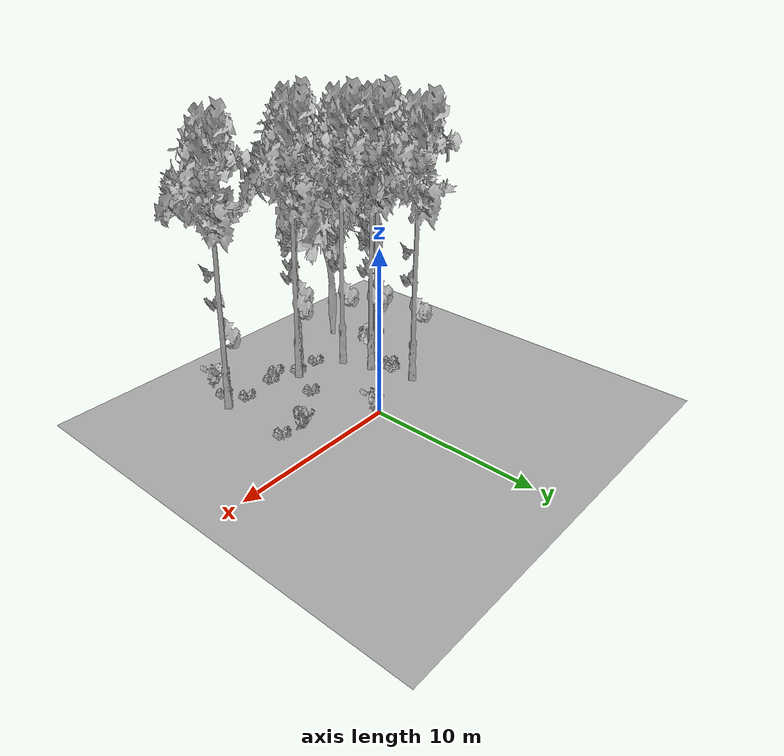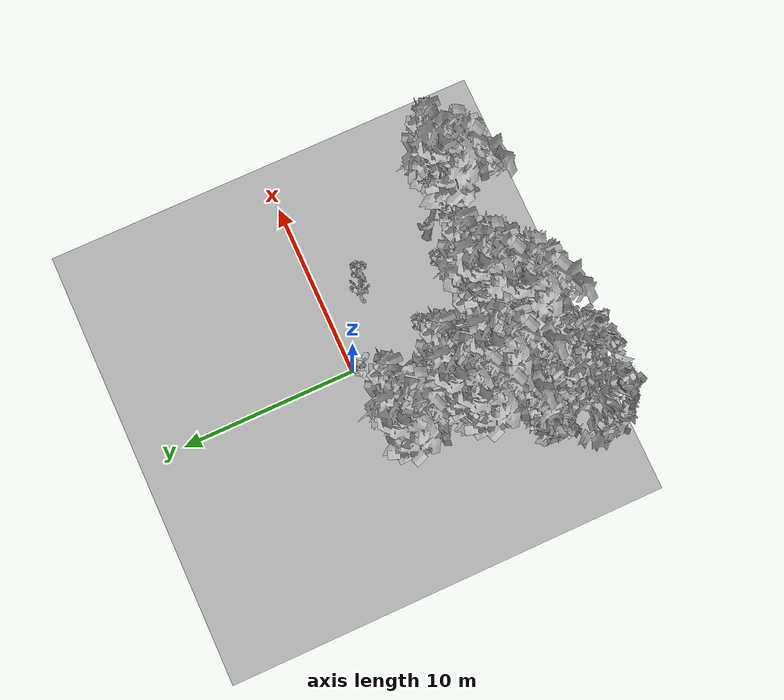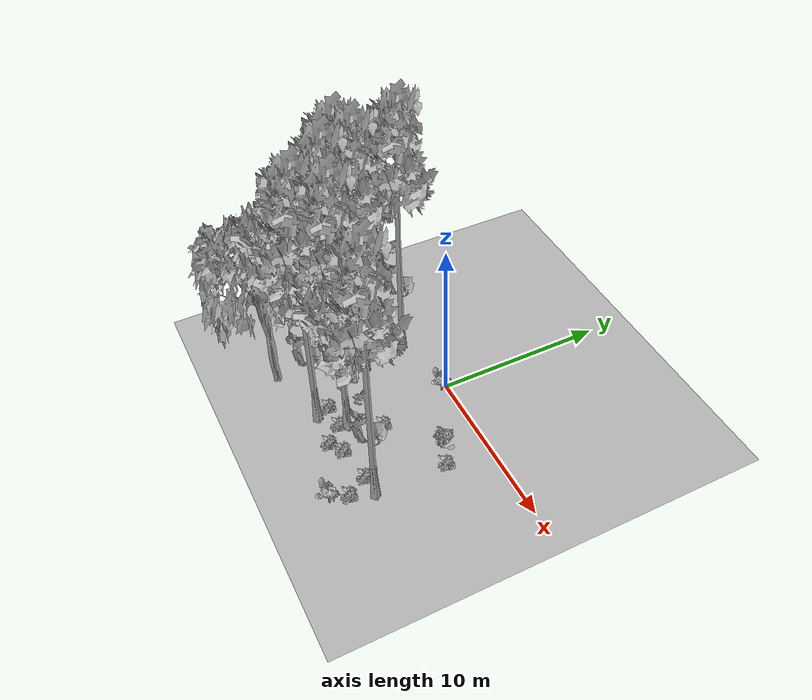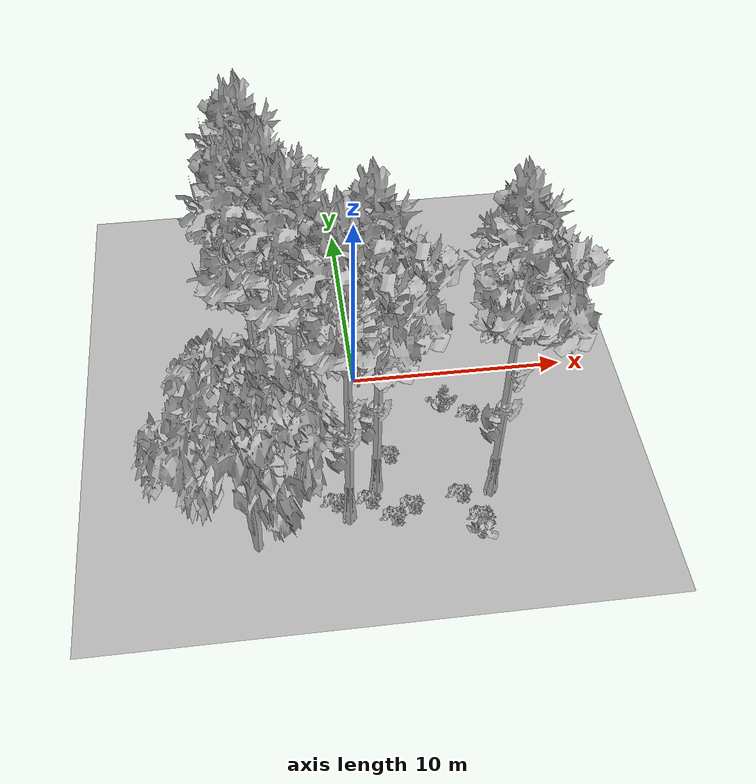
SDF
<sdf version="1.7">
 <world name="default">
  <model name="ground_plane">
   <static>1</static>
   <link name="link">
    <collision name="collision">
     <pose>-50 0 0 0 -0 0</pose>
     <geometry><plane><normal>0 0 1</normal><size>80 80</size></plane></geometry>
     <surface><contact><ode><min_depth>0.01</min_depth><max_vel>0</max_vel></ode></contact></surface>
    </collision>
    <visual name="grass">
     <cast_shadows>0</cast_shadows>
     <geometry>
      <mesh>
       <scale>0.46714285714285714 0.46714285714285714 0.1</scale>
       <uri>file://grass_plane/meshes/grass_plane.dae</uri>
      </mesh>
     </geometry>
    </visual>
   </link>
  </model>
  <model name="Tree 195">
   <static>1</static>
   <pose>-2.7331129355018433 -5.4296112174977935 0 1.57079 -0 0</pose>
   <link name="link">
    <collision name="collision">
     <geometry><mesh><scale>3.5 5 3.5</scale><uri>model://tree_9/meshes/tree_9.obj</uri></mesh></geometry>
    </collision>
    <visual name="visual">
     <geometry><mesh><scale>3.5 5 3.5</scale><uri>model://tree_9/meshes/tree_9.obj</uri></mesh></geometry>
    </visual>
   </link>
  </model>
  <model name="Tree 268">
   <static>1</static>
   <pose>0.24644010324288956 -6.296736931536913 0 1.57079 -0 0</pose>
   <link name="link">
    <collision name="collision">
     <geometry><mesh><scale>3.5 5 3.5</scale><uri>model://tree_9/meshes/tree_9.obj</uri></mesh></geometry>
    </collision>
    <visual name="visual">
     <geometry><mesh><scale>3.5 5 3.5</scale><uri>model://tree_9/meshes/tree_9.obj</uri></mesh></geometry>
    </visual>
   </link>
  </model>
  <model name="Tree 457">
   <static>1</static>
   <pose>5.220989786952003 -6.870884229453303 0 1.57079 -0 0</pose>
   <link name="link">
    <collision name="collision">
     <geometry><mesh><scale>3.5 5 3.5</scale><uri>model://tree_9/meshes/tree_9.obj</uri></mesh></geometry>
    </collision>
    <visual name="visual">
     <geometry><mesh><scale>3.5 5 3.5</scale><uri>model://tree_9/meshes/tree_9.obj</uri></mesh></geometry>
    </visual>
   </link>
  </model>
  <model name="Tree 513">
   <static>1</static>
   <pose>-4.010077578478388 -0.9037932036449945 0 1.57079 -0 0</pose>
   <link name="link">
    <collision name="collision">
     <geometry><mesh><scale>3.5 5 3.5</scale><uri>model://tree_9/meshes/tree_9.obj</uri></mesh></geometry>
    </collision>
    <visual name="visual">
     <geometry><mesh><scale>3.5 5 3.5</scale><uri>model://tree_9/meshes/tree_9.obj</uri></mesh></geometry>
    </visual>
   </link>
  </model>
  <model name="Tree 557">
   <static>1</static>
   <pose>-5.106935548508787 -8.541553201394365 0 1.57079 -0 0</pose>
   <link name="link">
    <collision name="collision">
     <geometry><mesh><scale>3.5 5 3.5</scale><uri>model://tree_2/meshes/tree_2.obj</uri></mesh></geometry>
    </collision>
    <visual name="visual">
     <geometry><mesh><scale>3.5 5 3.5</scale><uri>model://tree_2/meshes/tree_2.obj</uri></mesh></geometry>
    </visual>
   </link>
  </model>
  <model name="Tree 567">
   <static>1</static>
   <pose>-3.323274716355641 -3.627277438538485 0 1.57079 -0 0</pose>
   <link name="link">
    <collision name="collision">
     <geometry><mesh><scale>3.5 5 3.5</scale><uri>model://tree_9/meshes/tree_9.obj</uri></mesh></geometry>
    </collision>
    <visual name="visual">
     <geometry><mesh><scale>3.5 5 3.5</scale><uri>model://tree_9/meshes/tree_9.obj</uri></mesh></geometry>
    </visual>
   </link>
  </model>
  <model name="Tree 603">
   <static>1</static>
   <pose>-4.376291225312514 -4.1410467500056285 0 1.57079 -0 0</pose>
   <link name="link">
    <collision name="collision">
     <geometry><mesh><scale>3.5 5 3.5</scale><uri>model://tree_9/meshes/tree_9.obj</uri></mesh></geometry>
    </collision>
    <visual name="visual">
     <geometry><mesh><scale>3.5 5 3.5</scale><uri>model://tree_9/meshes/tree_9.obj</uri></mesh></geometry>
    </visual>
   </link>
  </model>
  <model name="Tree 634">
   <static>1</static>
   <pose>-1.057734217909669 -7.579275827588091 0 1.57079 -0 0</pose>
   <link name="link">
    <collision name="collision">
     <geometry><mesh><scale>3.5 5 3.5</scale><uri>model://tree_9/meshes/tree_9.obj</uri></mesh></geometry>
    </collision>
    <visual name="visual">
     <geometry><mesh><scale>3.5 5 3.5</scale><uri>model://tree_9/meshes/tree_9.obj</uri></mesh></geometry>
    </visual>
   </link>
  </model>
  <model name="Bush 51">
   <static>1</static>
   <pose>-0.12871209730688804 -6.755957884446779 0 1.57079 -0 0</pose>
   <link name="link">
    <collision name="collision">
     <geometry><mesh><scale>2 2 2</scale><uri>model://bush_2/meshes/bush_2.obj</uri></mesh></geometry>
     <surface><contact><collide_without_contact>false</collide_without_contact></contact></surface>
    </collision>
    <visual name="visual">
     <geometry><mesh><scale>2 2 2</scale><uri>model://bush_2/meshes/bush_2.obj</uri></mesh></geometry>
    </visual>
   </link>
  </model>
  <model name="Bush 75">
   <static>1</static>
   <pose>1.677488950583168 -7.228501055414078 0 1.57079 -0 0</pose>
   <link name="link">
    <collision name="collision">
     <geometry><mesh><scale>2 2 2</scale><uri>model://bush_2/meshes/bush_2.obj</uri></mesh></geometry>
     <surface><contact><collide_without_contact>false</collide_without_contact></contact></surface>
    </collision>
    <visual name="visual">
     <geometry><mesh><scale>2 2 2</scale><uri>model://bush_2/meshes/bush_2.obj</uri></mesh></geometry>
    </visual>
   </link>
  </model>
  <model name="Bush 119">
   <static>1</static>
   <pose>5.049040550601141 -2.619945169322321 0 1.57079 -0 0</pose>
   <link name="link">
    <collision name="collision">
     <geometry><mesh><scale>2 2 2</scale><uri>model://bush_2/meshes/bush_2.obj</uri></mesh></geometry>
     <surface><contact><collide_without_contact>false</collide_without_contact></contact></surface>
    </collision>
    <visual name="visual">
     <geometry><mesh><scale>2 2 2</scale><uri>model://bush_2/meshes/bush_2.obj</uri></mesh></geometry>
    </visual>
   </link>
  </model>
  <model name="Bush 185">
   <static>1</static>
   <pose>-4.176613511727169 -2.6666983139964344 0 1.57079 -0 0</pose>
   <link name="link">
    <collision name="collision">
     <geometry><mesh><scale>2 2 2</scale><uri>model://bush_2/meshes/bush_2.obj</uri></mesh></geometry>
     <surface><contact><collide_without_contact>false</collide_without_contact></contact></surface>
    </collision>
    <visual name="visual">
     <geometry><mesh><scale>2 2 2</scale><uri>model://bush_2/meshes/bush_2.obj</uri></mesh></geometry>
    </visual>
   </link>
  </model>
  <model name="Bush 205">
   <static>1</static>
   <pose>4.485133492907764 -9.160468462343694 0 1.57079 -0 0</pose>
   <link name="link">
    <collision name="collision">
     <geometry><mesh><scale>2 2 2</scale><uri>model://bush_0/meshes/bush_0.obj</uri></mesh></geometry>
     <surface><contact><collide_without_contact>false</collide_without_contact></contact></surface>
    </collision>
    <visual name="visual">
     <geometry><mesh><scale>2 2 2</scale><uri>model://bush_0/meshes/bush_0.obj</uri></mesh></geometry>
    </visual>
   </link>
  </model>
  <model name="Bush 255">
   <static>1</static>
   <pose>-1.6175197136010055 -6.7487146240998115 0 1.57079 -0 0</pose>
   <link name="link">
    <collision name="collision">
     <geometry><mesh><scale>2 2 2</scale><uri>model://bush_2/meshes/bush_2.obj</uri></mesh></geometry>
     <surface><contact><collide_without_contact>false</collide_without_contact></contact></surface>
    </collision>
    <visual name="visual">
     <geometry><mesh><scale>2 2 2</scale><uri>model://bush_2/meshes/bush_2.obj</uri></mesh></geometry>
    </visual>
   </link>
  </model>
  <model name="Bush 388">
   <static>1</static>
   <pose>3.8459063134873404 -2.247909614488165 0 1.57079 -0 0</pose>
   <link name="link">
    <collision name="collision">
     <geometry><mesh><scale>2 2 2</scale><uri>model://bush_4/meshes/bush_4.obj</uri></mesh></geometry>
     <surface><contact><collide_without_contact>false</collide_without_contact></contact></surface>
    </collision>
    <visual name="visual">
     <geometry><mesh><scale>2 2 2</scale><uri>model://bush_4/meshes/bush_4.obj</uri></mesh></geometry>
    </visual>
   </link>
  </model>
  <model name="Bush 421">
   <static>1</static>
   <pose>-4.622269216687336 -3.170272840903209 0 1.57079 -0 0</pose>
   <link name="link">
    <collision name="collision">
     <geometry><mesh><scale>2 2 2</scale><uri>model://bush_2/meshes/bush_2.obj</uri></mesh></geometry>
     <surface><contact><collide_without_contact>false</collide_without_contact></contact></surface>
    </collision>
    <visual name="visual">
     <geometry><mesh><scale>2 2 2</scale><uri>model://bush_2/meshes/bush_2.obj</uri></mesh></geometry>
    </visual>
   </link>
  </model>
  <model name="Bush 434">
   <static>1</static>
   <pose>0.17294119853078627 -0.3607964452847128 0 1.57079 -0 0</pose>
   <link name="link">
    <collision name="collision">
     <geometry><mesh><scale>2 2 2</scale><uri>model://bush_0/meshes/bush_0.obj</uri></mesh></geometry>
     <surface><contact><collide_without_contact>false</collide_without_contact></contact></surface>
    </collision>
    <visual name="visual">
     <geometry><mesh><scale>2 2 2</scale><uri>model://bush_0/meshes/bush_0.obj</uri></mesh></geometry>
    </visual>
   </link>
  </model>
  <model name="Bush 512">
   <static>1</static>
   <pose>-5.282817907059396 -5.563931220496912 0 1.57079 -0 0</pose>
   <link name="link">
    <collision name="collision">
     <geometry><mesh><scale>2 2 2</scale><uri>model://bush_1/meshes/bush_1.obj</uri></mesh></geometry>
     <surface><contact><collide_without_contact>false</collide_without_contact></contact></surface>
    </collision>
    <visual name="visual">
     <geometry><mesh><scale>2 2 2</scale><uri>model://bush_1/meshes/bush_1.obj</uri></mesh></geometry>
    </visual>
   </link>
  </model>
  <model name="Bush 517">
   <static>1</static>
   <pose>0.8522613158690362 -7.717591104685027 0 1.57079 -0 0</pose>
   <link name="link">
    <collision name="collision">
     <geometry><mesh><scale>2 2 2</scale><uri>model://bush_2/meshes/bush_2.obj</uri></mesh></geometry>
     <surface><contact><collide_without_contact>false</collide_without_contact></contact></surface>
    </collision>
    <visual name="visual">
     <geometry><mesh><scale>2 2 2</scale><uri>model://bush_2/meshes/bush_2.obj</uri></mesh></geometry>
    </visual>
   </link>
  </model>
  <model name="Bush 543">
   <static>1</static>
   <pose>4.564880627503193 -8.107193933924648 0 1.57079 -0 0</pose>
   <link name="link">
    <collision name="collision">
     <geometry><mesh><scale>2 2 2</scale><uri>model://bush_2/meshes/bush_2.obj</uri></mesh></geometry>
     <surface><contact><collide_without_contact>false</collide_without_contact></contact></surface>
    </collision>
    <visual name="visual">
     <geometry><mesh><scale>2 2 2</scale><uri>model://bush_2/meshes/bush_2.obj</uri></mesh></geometry>
    </visual>
   </link>
  </model>
  <model name="Bush 608">
   <static>1</static>
   <pose>0.9868587157159254 -4.501910779619649 0 1.57079 -0 0</pose>
   <link name="link">
    <collision name="collision">
     <geometry><mesh><scale>2 2 2</scale><uri>model://bush_2/meshes/bush_2.obj</uri></mesh></geometry>
     <surface><contact><collide_without_contact>false</collide_without_contact></contact></surface>
    </collision>
    <visual name="visual">
     <geometry><mesh><scale>2 2 2</scale><uri>model://bush_2/meshes/bush_2.obj</uri></mesh></geometry>
    </visual>
   </link>
  </model>
  <model name="Bush 613">
   <static>1</static>
   <pose>3.845751308419459 -6.900716472108428 0 1.57079 -0 0</pose>
   <link name="link">
    <collision name="collision">
     <geometry><mesh><scale>2 2 2</scale><uri>model://bush_2/meshes/bush_2.obj</uri></mesh></geometry>
     <surface><contact><collide_without_contact>false</collide_without_contact></contact></surface>
    </collision>
    <visual name="visual">
     <geometry><mesh><scale>2 2 2</scale><uri>model://bush_2/meshes/bush_2.obj</uri></mesh></geometry>
    </visual>
   </link>
  </model>
 </world>
</sdf>
